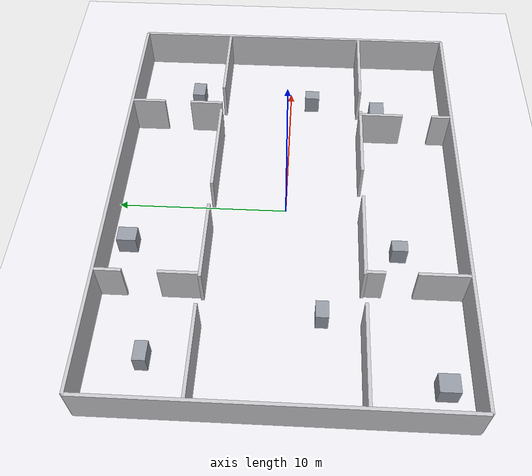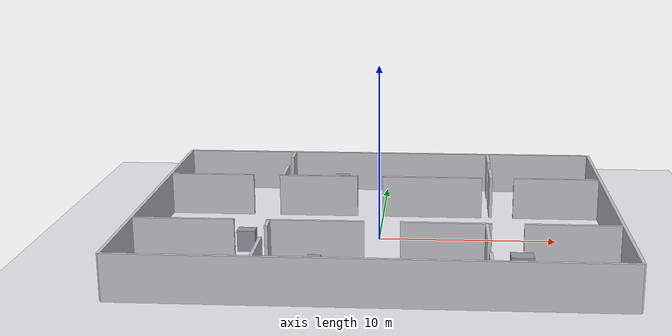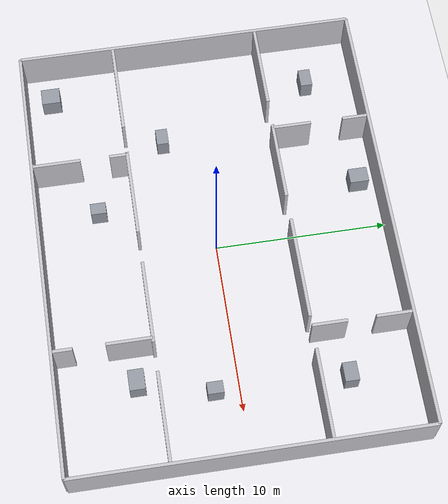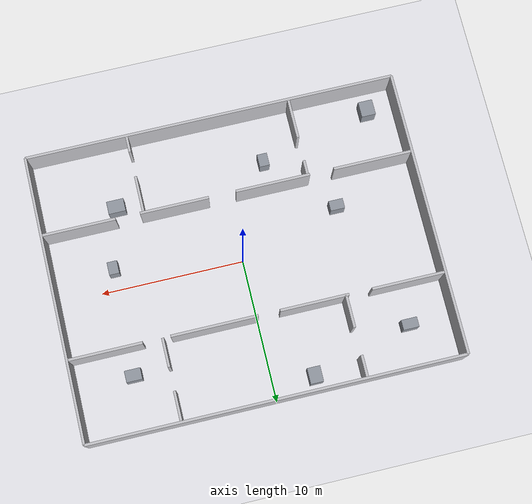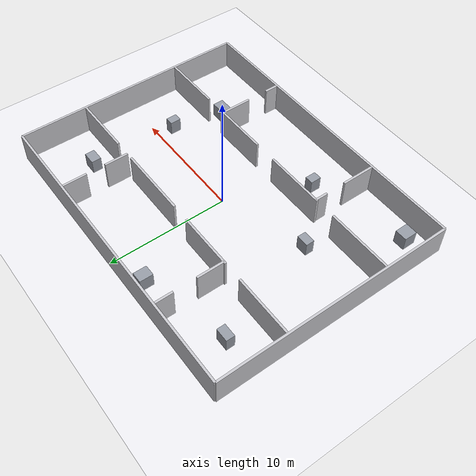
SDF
<?xml version="1.0"?>
<sdf version="1.9"><world name="new_room_world">
<plugin filename="gz-sim-physics-system" name="gz::sim::systems::Physics"/><plugin filename="gz-sim-user-commands-system" name="gz::sim::systems::UserCommands"/><plugin filename="gz-sim-scene-broadcaster-system" name="gz::sim::systems::SceneBroadcaster"/><plugin filename="gz-sim-sensors-system" name="gz::sim::systems::Sensors"><render_engine>ogre2</render_engine></plugin><plugin filename="gz-sim-imu-system" name="gz::sim::systems::Imu"/>
<physics name="new_room_realtime" type="ignored"><max_step_size>0.001</max_step_size><real_time_factor>1</real_time_factor></physics><gravity>0 0 -9.8</gravity><scene><ambient>0.85 0.85 0.87 1</ambient><background>0.68 0.68 0.71 1</background><shadows>false</shadows></scene><light name="sun" type="directional"><cast_shadows>false</cast_shadows><pose>0 0 10 0 0 0</pose><diffuse>0.95 0.95 0.95 1</diffuse><direction>-0.3 0.2 -1</direction></light>
<model name="new_room_ground"><static>true</static><link name="ground_link"><collision name="ground_collision"><geometry><plane><normal>0 0 1</normal><size>40 32</size></plane></geometry></collision><visual name="ground_visual"><geometry><plane><normal>0 0 1</normal><size>40 32</size></plane></geometry><material><ambient>0.92 0.92 0.94 1</ambient><diffuse>0.92 0.92 0.94 1</diffuse></material></visual></link></model>
<model name="mini_hospital_structure"><static>true</static><link name="structure">
<collision name="mx048_c000"><pose>0 10 1.25 0 0 0</pose><geometry><box><size>26 0.18 2.5</size></box></geometry></collision><visual name="mx048_v000"><pose>0 10 1.25 0 0 0</pose><geometry><box><size>26 0.18 2.5</size></box></geometry><material><ambient>0.78 0.78 0.80 1</ambient><diffuse>0.78 0.78 0.80 1</diffuse></material></visual>
<collision name="mx048_c001"><pose>0 -10 1.25 0 0 0</pose><geometry><box><size>26 0.18 2.5</size></box></geometry></collision><visual name="mx048_v001"><pose>0 -10 1.25 0 0 0</pose><geometry><box><size>26 0.18 2.5</size></box></geometry><material><ambient>0.78 0.78 0.80 1</ambient><diffuse>0.78 0.78 0.80 1</diffuse></material></visual>
<collision name="mx048_c002"><pose>-13 0 1.25 0 0 0</pose><geometry><box><size>0.18 20 2.5</size></box></geometry></collision><visual name="mx048_v002"><pose>-13 0 1.25 0 0 0</pose><geometry><box><size>0.18 20 2.5</size></box></geometry><material><ambient>0.78 0.78 0.80 1</ambient><diffuse>0.78 0.78 0.80 1</diffuse></material></visual>
<collision name="mx048_c003"><pose>13 0 1.25 0 0 0</pose><geometry><box><size>0.18 20 2.5</size></box></geometry></collision><visual name="mx048_v003"><pose>13 0 1.25 0 0 0</pose><geometry><box><size>0.18 20 2.5</size></box></geometry><material><ambient>0.78 0.78 0.80 1</ambient><diffuse>0.78 0.78 0.80 1</diffuse></material></visual>
<collision name="mx048_c004"><pose>-10.405 4.3 1.25 0 0 0</pose><geometry><box><size>5.01 0.18 2.5</size></box></geometry></collision><visual name="mx048_v004"><pose>-10.405 4.3 1.25 0 0 0</pose><geometry><box><size>5.01 0.18 2.5</size></box></geometry><material><ambient>0.78 0.78 0.80 1</ambient><diffuse>0.78 0.78 0.80 1</diffuse></material></visual>
<collision name="mx048_c005"><pose>-3.925 4.3 1.25 0 0 0</pose><geometry><box><size>4.75 0.18 2.5</size></box></geometry></collision><visual name="mx048_v005"><pose>-3.925 4.3 1.25 0 0 0</pose><geometry><box><size>4.75 0.18 2.5</size></box></geometry><material><ambient>0.78 0.78 0.80 1</ambient><diffuse>0.78 0.78 0.80 1</diffuse></material></visual>
<collision name="mx048_c006"><pose>2.95 4.3 1.25 0 0 0</pose><geometry><box><size>6 0.18 2.5</size></box></geometry></collision><visual name="mx048_v006"><pose>2.95 4.3 1.25 0 0 0</pose><geometry><box><size>6 0.18 2.5</size></box></geometry><material><ambient>0.78 0.78 0.80 1</ambient><diffuse>0.78 0.78 0.80 1</diffuse></material></visual>
<collision name="mx048_c007"><pose>10.38 4.3 1.25 0 0 0</pose><geometry><box><size>5.06 0.18 2.5</size></box></geometry></collision><visual name="mx048_v007"><pose>10.38 4.3 1.25 0 0 0</pose><geometry><box><size>5.06 0.18 2.5</size></box></geometry><material><ambient>0.78 0.78 0.80 1</ambient><diffuse>0.78 0.78 0.80 1</diffuse></material></visual>
<collision name="mx048_c008"><pose>-10.18 -4.4 1.25 0 0 0</pose><geometry><box><size>5.46 0.18 2.5</size></box></geometry></collision><visual name="mx048_v008"><pose>-10.18 -4.4 1.25 0 0 0</pose><geometry><box><size>5.46 0.18 2.5</size></box></geometry><material><ambient>0.78 0.78 0.80 1</ambient><diffuse>0.78 0.78 0.80 1</diffuse></material></visual>
<collision name="mx048_c009"><pose>-3.15 -4.4 1.25 0 0 0</pose><geometry><box><size>5.2 0.18 2.5</size></box></geometry></collision><visual name="mx048_v009"><pose>-3.15 -4.4 1.25 0 0 0</pose><geometry><box><size>5.2 0.18 2.5</size></box></geometry><material><ambient>0.78 0.78 0.80 1</ambient><diffuse>0.78 0.78 0.80 1</diffuse></material></visual>
<collision name="mx048_c010"><pose>3.75 -4.4 1.25 0 0 0</pose><geometry><box><size>4.8 0.18 2.5</size></box></geometry></collision><visual name="mx048_v010"><pose>3.75 -4.4 1.25 0 0 0</pose><geometry><box><size>4.8 0.18 2.5</size></box></geometry><material><ambient>0.78 0.78 0.80 1</ambient><diffuse>0.78 0.78 0.80 1</diffuse></material></visual>
<collision name="mx048_c011"><pose>10.38 -4.4 1.25 0 0 0</pose><geometry><box><size>5.06 0.18 2.5</size></box></geometry></collision><visual name="mx048_v011"><pose>10.38 -4.4 1.25 0 0 0</pose><geometry><box><size>5.06 0.18 2.5</size></box></geometry><material><ambient>0.78 0.78 0.80 1</ambient><diffuse>0.78 0.78 0.80 1</diffuse></material></visual>
<collision name="mx048_c012"><pose>-6.1 5.425 1.25 0 0 0</pose><geometry><box><size>0.18 2.25 2.5</size></box></geometry></collision><visual name="mx048_v012"><pose>-6.1 5.425 1.25 0 0 0</pose><geometry><box><size>0.18 2.25 2.5</size></box></geometry><material><ambient>0.78 0.78 0.80 1</ambient><diffuse>0.78 0.78 0.80 1</diffuse></material></visual>
<collision name="mx048_c013"><pose>-6.1 9.18 1.25 0 0 0</pose><geometry><box><size>0.18 1.46 2.5</size></box></geometry></collision><visual name="mx048_v013"><pose>-6.1 9.18 1.25 0 0 0</pose><geometry><box><size>0.18 1.46 2.5</size></box></geometry><material><ambient>0.78 0.78 0.80 1</ambient><diffuse>0.78 0.78 0.80 1</diffuse></material></visual>
<collision name="mx048_c014"><pose>6.5 5.3 1.25 0 0 0</pose><geometry><box><size>0.18 2 2.5</size></box></geometry></collision><visual name="mx048_v014"><pose>6.5 5.3 1.25 0 0 0</pose><geometry><box><size>0.18 2 2.5</size></box></geometry><material><ambient>0.78 0.78 0.80 1</ambient><diffuse>0.78 0.78 0.80 1</diffuse></material></visual>
<collision name="mx048_c015"><pose>6.5 8.905 1.25 0 0 0</pose><geometry><box><size>0.18 2.01 2.5</size></box></geometry></collision><visual name="mx048_v015"><pose>6.5 8.905 1.25 0 0 0</pose><geometry><box><size>0.18 2.01 2.5</size></box></geometry><material><ambient>0.78 0.78 0.80 1</ambient><diffuse>0.78 0.78 0.80 1</diffuse></material></visual>
<collision name="mx048_c016"><pose>-5.6 -8.53 1.25 0 0 0</pose><geometry><box><size>0.18 2.76 2.5</size></box></geometry></collision><visual name="mx048_v016"><pose>-5.6 -8.53 1.25 0 0 0</pose><geometry><box><size>0.18 2.76 2.5</size></box></geometry><material><ambient>0.78 0.78 0.80 1</ambient><diffuse>0.78 0.78 0.80 1</diffuse></material></visual>
<collision name="mx048_c017"><pose>-5.6 -4.925 1.25 0 0 0</pose><geometry><box><size>0.18 1.05 2.5</size></box></geometry></collision><visual name="mx048_v017"><pose>-5.6 -4.925 1.25 0 0 0</pose><geometry><box><size>0.18 1.05 2.5</size></box></geometry><material><ambient>0.78 0.78 0.80 1</ambient><diffuse>0.78 0.78 0.80 1</diffuse></material></visual>
<collision name="mx048_c018"><pose>5.9 -9.355 1.25 0 0 0</pose><geometry><box><size>0.18 1.11 2.5</size></box></geometry></collision><visual name="mx048_v018"><pose>5.9 -9.355 1.25 0 0 0</pose><geometry><box><size>0.18 1.11 2.5</size></box></geometry><material><ambient>0.78 0.78 0.80 1</ambient><diffuse>0.78 0.78 0.80 1</diffuse></material></visual>
<collision name="mx048_c019"><pose>5.9 -5.7 1.25 0 0 0</pose><geometry><box><size>0.18 2.6 2.5</size></box></geometry></collision><visual name="mx048_v019"><pose>5.9 -5.7 1.25 0 0 0</pose><geometry><box><size>0.18 2.6 2.5</size></box></geometry><material><ambient>0.78 0.78 0.80 1</ambient><diffuse>0.78 0.78 0.80 1</diffuse></material></visual>
<collision name="mx048_c020"><pose>-10 7 0.6 0 0 0</pose><geometry><box><size>1.1 0.7 1.2</size></box></geometry></collision><visual name="mx048_v020"><pose>-10 7 0.6 0 0 0</pose><geometry><box><size>1.1 0.7 1.2</size></box></geometry><material><ambient>0.58 0.60 0.64 1</ambient><diffuse>0.58 0.60 0.64 1</diffuse></material></visual>
<collision name="mx048_c021"><pose>-2.9 8.9 0.6 0 0 0</pose><geometry><box><size>0.9 1.1 1.2</size></box></geometry></collision><visual name="mx048_v021"><pose>-2.9 8.9 0.6 0 0 0</pose><geometry><box><size>0.9 1.1 1.2</size></box></geometry><material><ambient>0.58 0.60 0.64 1</ambient><diffuse>0.58 0.60 0.64 1</diffuse></material></visual>
<collision name="mx048_c022"><pose>9 6.1 0.6 0 0 0</pose><geometry><box><size>1.1 0.8 1.2</size></box></geometry></collision><visual name="mx048_v022"><pose>9 6.1 0.6 0 0 0</pose><geometry><box><size>1.1 0.8 1.2</size></box></geometry><material><ambient>0.58 0.60 0.64 1</ambient><diffuse>0.58 0.60 0.64 1</diffuse></material></visual>
<collision name="mx048_c023"><pose>-11 -8.5 0.6 0 0 0</pose><geometry><box><size>1 1.1 1.2</size></box></geometry></collision><visual name="mx048_v023"><pose>-11 -8.5 0.6 0 0 0</pose><geometry><box><size>1 1.1 1.2</size></box></geometry><material><ambient>0.58 0.60 0.64 1</ambient><diffuse>0.58 0.60 0.64 1</diffuse></material></visual>
<collision name="mx048_c024"><pose>-3 -6.5 0.6 0 0 0</pose><geometry><box><size>0.7 0.9 1.2</size></box></geometry></collision><visual name="mx048_v024"><pose>-3 -6.5 0.6 0 0 0</pose><geometry><box><size>0.7 0.9 1.2</size></box></geometry><material><ambient>0.58 0.60 0.64 1</ambient><diffuse>0.58 0.60 0.64 1</diffuse></material></visual>
<collision name="mx048_c025"><pose>7.7 -5.6 0.6 0 0 0</pose><geometry><box><size>1.2 0.9 1.2</size></box></geometry></collision><visual name="mx048_v025"><pose>7.7 -5.6 0.6 0 0 0</pose><geometry><box><size>1.2 0.9 1.2</size></box></geometry><material><ambient>0.58 0.60 0.64 1</ambient><diffuse>0.58 0.60 0.64 1</diffuse></material></visual>
<collision name="mx048_c026"><pose>-7.2 -2.2 0.6 0 0 0</pose><geometry><box><size>1 0.7 1.2</size></box></geometry></collision><visual name="mx048_v026"><pose>-7.2 -2.2 0.6 0 0 0</pose><geometry><box><size>1 0.7 1.2</size></box></geometry><material><ambient>0.58 0.60 0.64 1</ambient><diffuse>0.58 0.60 0.64 1</diffuse></material></visual>
<collision name="mx048_c027"><pose>8.8 -1.4 0.6 0 0 0</pose><geometry><box><size>0.7 0.9 1.2</size></box></geometry></collision><visual name="mx048_v027"><pose>8.8 -1.4 0.6 0 0 0</pose><geometry><box><size>0.7 0.9 1.2</size></box></geometry><material><ambient>0.58 0.60 0.64 1</ambient><diffuse>0.58 0.60 0.64 1</diffuse></material></visual>
</link></model></world></sdf>
